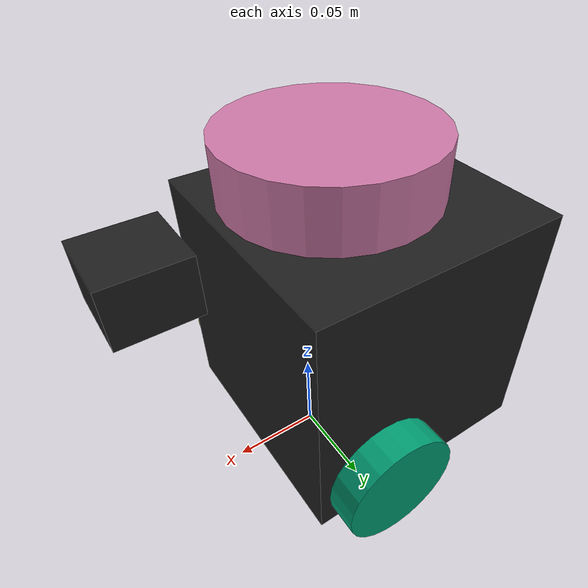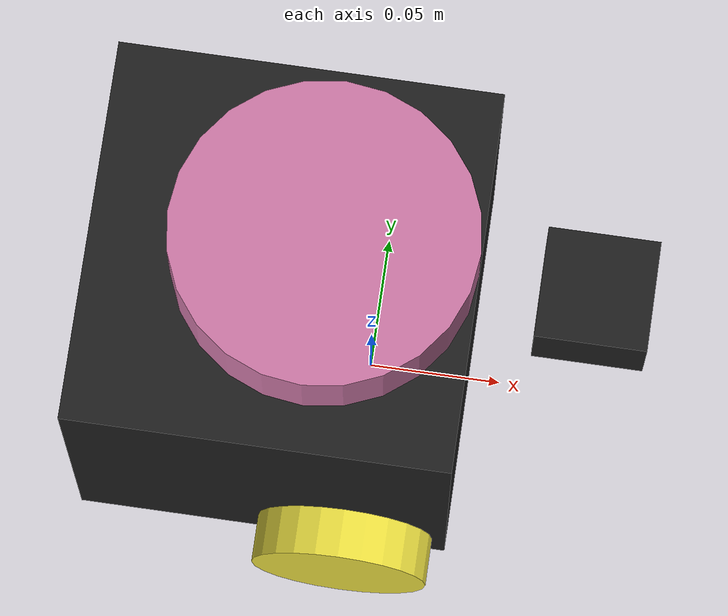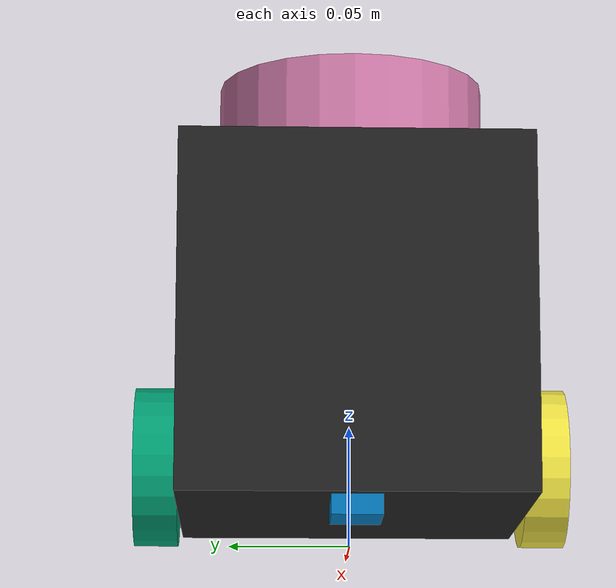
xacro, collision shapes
<?xml version="1.0" ?>
<robot name="turtlebot3_burger" xmlns:xacro="http://ros.org/wiki/xacro">
  <xacro:include filename="$(find turtlebot3_description)/urdf/common_properties.xacro"/>
  <xacro:include filename="$(find turtlebot3_description)/urdf/turtlebot3_burger.gazebo.xacro"/>

  <link name="base_footprint"/>

  <joint name="base_joint" type="fixed">
    <parent link="base_footprint"/>
    <child link="base_link"/>
    <origin xyz="0.0 0.0 0.010" rpy="0 0 0"/>
  </joint>

  <link name="base_link">
    <visual>
      <origin xyz="-0.032 0 0.0" rpy="0 0 0"/>
      <geometry>
        <mesh filename="package://turtlebot3_description/meshes/bases/burger_base.stl" scale="0.001 0.001 0.001"/>
      </geometry>
      <material name="light_black"/>
    </visual>

    <collision>
      <origin xyz="-0.032 0 0.070" rpy="0 0 0"/>
      <geometry>
        <box size="0.140 0.140 0.143"/>
      </geometry>
    </collision>

    <inertial>
      <origin xyz="0 0 0" rpy="0 0 0"/>
      <mass value="8.2573504e-01"/>
      <inertia ixx="2.2124416e-03" ixy="-1.2294101e-05" ixz="3.4938785e-05"
               iyy="2.1193702e-03" iyz="-5.0120904e-06"
               izz="2.0064271e-03" />
    </inertial>
  </link>

  <joint name="wheel_left_joint" type="continuous">
    <parent link="base_link"/>
    <child link="wheel_left_link"/>
    <origin xyz="0.0 0.08 0.023" rpy="-1.57 0 0"/>
    <axis xyz="0 0 1"/>
  </joint>

  <link name="wheel_left_link">
    <visual>
      <origin xyz="0 0 0" rpy="1.57 0 0"/>
      <geometry>
        <mesh filename="package://turtlebot3_description/meshes/wheels/left_tire.stl" scale="0.001 0.001 0.001"/>
      </geometry>
      <material name="dark"/>
    </visual>

    <collision>
      <origin xyz="0 0 0" rpy="0 0 0"/>
      <geometry>
        <cylinder length="0.018" radius="0.033"/>
      </geometry>
    </collision>

    <inertial>
      <origin xyz="0 0 0" />
      <mass value="2.8498940e-02" />
      <inertia ixx="1.1175580e-05" ixy="-4.2369783e-11" ixz="-5.9381719e-09"
               iyy="1.1192413e-05" iyz="-1.4400107e-11"
               izz="2.0712558e-05" />
      </inertial>
  </link>

  <joint name="wheel_right_joint" type="continuous">
    <parent link="base_link"/>
    <child link="wheel_right_link"/>
    <origin xyz="0.0 -0.080 0.023" rpy="-1.57 0 0"/>
    <axis xyz="0 0 1"/>
  </joint>

  <link name="wheel_right_link">
    <visual>
      <origin xyz="0 0 0" rpy="1.57 0 0"/>
      <geometry>
        <mesh filename="package://turtlebot3_description/meshes/wheels/right_tire.stl" scale="0.001 0.001 0.001"/>
      </geometry>
      <material name="dark"/>
    </visual>

    <collision>
      <origin xyz="0 0 0" rpy="0 0 0"/>
      <geometry>
        <cylinder length="0.018" radius="0.033"/>
      </geometry>
    </collision>

    <inertial>
      <origin xyz="0 0 0" />
      <mass value="2.8498940e-02" />
      <inertia ixx="1.1175580e-05" ixy="-4.2369783e-11" ixz="-5.9381719e-09"
               iyy="1.1192413e-05" iyz="-1.4400107e-11"
               izz="2.0712558e-05" />
      </inertial>
  </link>

  <joint name="caster_back_joint" type="fixed">
    <parent link="base_link"/>
    <child link="caster_back_link"/>
    <origin xyz="-0.081 0 -0.004" rpy="-1.57 0 0"/>
  </joint>

  <link name="caster_back_link">
    <collision>
      <origin xyz="0 0.001 0" rpy="0 0 0"/>
      <geometry>
        <box size="0.030 0.009 0.020"/>
      </geometry>
    </collision>

    <inertial>
      <origin xyz="0 0 0" />
      <mass value="0.005" />
      <inertia ixx="0.001" ixy="0.0" ixz="0.0"
               iyy="0.001" iyz="0.0"
               izz="0.001" />
    </inertial>
  </link>

  <joint name="imu_joint" type="fixed">
    <parent link="base_link"/>
    <child link="imu_link"/>
    <origin xyz="-0.032 0 0.068" rpy="0 0 0"/>
  </joint>

  <link name="imu_link"/>

  <joint name="scan_joint" type="fixed">
    <parent link="base_link"/>
    <child link="base_scan"/>
    <origin xyz="-0.032 0 0.172" rpy="0 0 0"/>
  </joint>

  <link name="base_scan">
    <visual>
      <origin xyz="0 0 0.0" rpy="0 0 0"/>
      <geometry>
        <mesh filename="package://turtlebot3_description/meshes/sensors/lds.stl" scale="0.001 0.001 0.001"/>
      </geometry>
      <material name="dark"/>
    </visual>

    <collision>
      <origin xyz="0.015 0 -0.0065" rpy="0 0 0"/>
      <geometry>
        <cylinder length="0.0315" radius="0.055"/>
      </geometry>
    </collision>

    <inertial>
      <mass value="0.114" />
      <origin xyz="0 0 0" />
      <inertia ixx="0.001" ixy="0.0" ixz="0.0"
               iyy="0.001" iyz="0.0"
               izz="0.001" />
    </inertial>
  </link>

    <!-- ================= CleanBot RGB Camera ================= -->

  <link name="camera_link">
    <visual>
      <origin xyz="0 0 0" rpy="0 0 0"/>
      <geometry>
        <box size="0.04 0.04 0.03"/>
      </geometry>
      <material name="black"/>
    </visual>

    <collision>
      <origin xyz="0 0 0" rpy="0 0 0"/>
      <geometry>
        <box size="0.04 0.04 0.03"/>
      </geometry>
    </collision>

    <inertial>
      <origin xyz="0 0 0" rpy="0 0 0"/>
      <mass value="0.05"/>
      <inertia
        ixx="0.00001" ixy="0.0" ixz="0.0"
        iyy="0.00001" iyz="0.0"
        izz="0.00001"/>
    </inertial>
  </link>

  <joint name="camera_joint" type="fixed">
    <parent link="base_link"/>
    <child link="camera_link"/>
    <!-- x 前方，z 高度。后面如果视角不对，就优先调这里 -->
    <origin xyz="0.08 0 0.14" rpy="0 0 0"/>
  </joint>

  <link name="camera_rgb_optical_frame"/>

  <joint name="camera_rgb_optical_joint" type="fixed">
    <parent link="camera_link"/>
    <child link="camera_rgb_optical_frame"/>
    <origin xyz="0 0 0" rpy="-1.5708 0 -1.5708"/>
  </joint>

  <gazebo reference="camera_link">
    <sensor type="camera" name="cleanbot_rgb_camera">
      <always_on>true</always_on>
      <update_rate>30</update_rate>

      <camera name="cleanbot_camera">
        <horizontal_fov>1.047</horizontal_fov>
        <image>
          <width>640</width>
          <height>480</height>
          <format>R8G8B8</format>
        </image>
        <clip>
          <near>0.05</near>
          <far>8.0</far>
        </clip>
      </camera>

      <plugin name="cleanbot_camera_controller" filename="libgazebo_ros_camera.so">
        <alwaysOn>true</alwaysOn>
        <updateRate>30.0</updateRate>
        <cameraName>camera</cameraName>
        <imageTopicName>rgb/image_raw</imageTopicName>
        <cameraInfoTopicName>rgb/camera_info</cameraInfoTopicName>
        <frameName>camera_rgb_optical_frame</frameName>
      </plugin>
    </sensor>
  </gazebo>

</robot>
